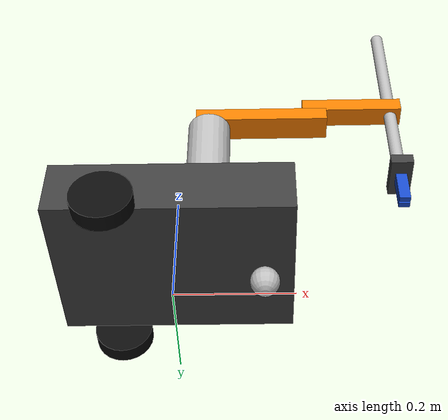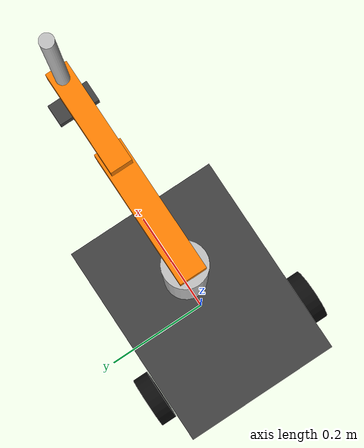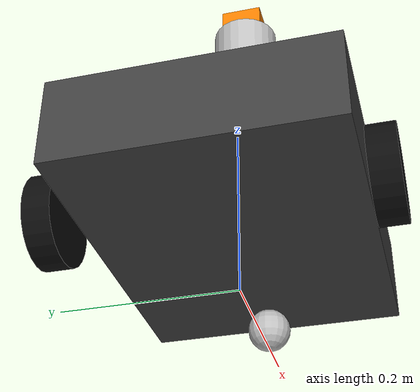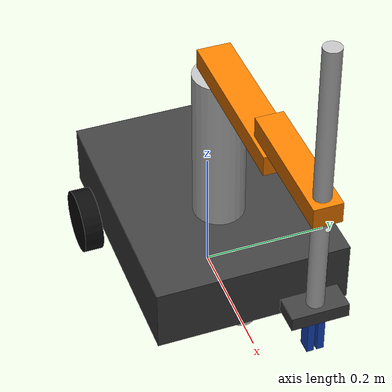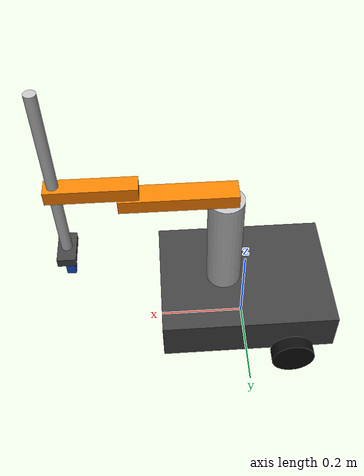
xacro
<?xml version="1.0"?>
<!-- 모바일 매니퓰레이터 최상위 파일 - 차동구동 베이스 + SCARA 팔 -->
<!--
  주의) 주석 안에 "콜론+공백"을 쓰지 말 것.
  gazebo_ros2_control(Humble)이 URDF를 ROS 파라미터(YAML)로 넘기면서 파싱 에러가 남.
-->

<robot name="mobile_manipulator" xmlns:xacro="http://www.ros.org/wiki/xacro">
  <xacro:arg name="use_sim" default="false"/>
  <!-- Gazebo 실행 시 bringup launch에서 컨트롤러 yaml 경로를 넘겨줌 -->
  <xacro:arg name="controllers_file" default=""/>

  <xacro:include filename="$(find mobile_manipulator_description)/urdf/common.xacro"/>
  <xacro:include filename="$(find mobile_manipulator_description)/urdf/base.xacro"/>
  <xacro:include filename="$(find mobile_manipulator_description)/urdf/scara_arm.xacro"/>
  <xacro:include filename="$(find mobile_manipulator_description)/urdf/gazebo.xacro"/>
  <xacro:include filename="$(find mobile_manipulator_description)/urdf/ros2_control.xacro"/>

  <xacro:mobile_base/>
  <xacro:scara_arm parent="base_link"/>

  <xacro:mobile_manipulator_ros2_control use_sim="$(arg use_sim)"/>
  <xacro:mobile_manipulator_gazebo controllers_file="$(arg controllers_file)"/>
</robot>

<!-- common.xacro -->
<!-- 공통 치수, 재질, 관성 매크로 -->
<robot xmlns:xacro="http://www.ros.org/wiki/xacro">

  <!-- ===================== 치수 (단위 - m, kg) ===================== -->
  <!-- 베이스 -->
  <xacro:property name="base_length" value="0.40"/>
  <xacro:property name="base_width"  value="0.30"/>
  <xacro:property name="base_height" value="0.10"/>
  <xacro:property name="base_mass"   value="5.0"/>

  <!-- 바퀴 (base_link 원점 = 바퀴 축 높이) -->
  <xacro:property name="wheel_radius" value="0.05"/>
  <xacro:property name="wheel_width"  value="0.03"/>
  <xacro:property name="wheel_mass"   value="0.5"/>
  <xacro:property name="wheel_x"      value="-0.10"/>
  <xacro:property name="wheel_y"      value="0.17"/>

  <!-- 캐스터 -->
  <xacro:property name="caster_radius" value="0.025"/>
  <xacro:property name="caster_mass"   value="0.1"/>
  <xacro:property name="caster_x"      value="0.15"/>

  <!-- SCARA 팔 -->
  <xacro:property name="arm_mount_x"     value="0.05"/>
  <xacro:property name="column_radius"   value="0.04"/>
  <xacro:property name="column_height"   value="0.25"/>
  <xacro:property name="column_mass"     value="0.5"/>

  <xacro:property name="link1_length" value="0.20"/>
  <xacro:property name="link1_width"  value="0.05"/>
  <xacro:property name="link1_height" value="0.03"/>
  <xacro:property name="link1_mass"   value="0.3"/>

  <xacro:property name="link2_length" value="0.15"/>
  <xacro:property name="link2_width"  value="0.04"/>
  <xacro:property name="link2_height" value="0.03"/>
  <xacro:property name="link2_mass"   value="0.2"/>

  <xacro:property name="quill_radius" value="0.012"/>
  <xacro:property name="quill_length" value="0.40"/>
  <xacro:property name="quill_mass"   value="0.1"/>
  <xacro:property name="quill_stroke" value="0.18"/>
  <!-- quill 프레임(= link2 바닥) 아래로 튀어나온 길이, 나머지는 위로 솟음 -->
  <xacro:property name="quill_bottom" value="0.15"/>

  <!-- 그리퍼 -->
  <xacro:property name="gripper_base_x"    value="0.04"/>
  <xacro:property name="gripper_base_y"    value="0.08"/>
  <xacro:property name="gripper_base_z"    value="0.02"/>
  <xacro:property name="gripper_base_mass" value="0.05"/>
  <xacro:property name="finger_x"    value="0.02"/>
  <xacro:property name="finger_y"    value="0.01"/>
  <xacro:property name="finger_z"    value="0.06"/>
  <xacro:property name="finger_mass" value="0.02"/>
  <xacro:property name="finger_stroke" value="0.03"/>

  <!-- ===================== 재질 (RViz 색상) ===================== -->
  <material name="dark_grey"><color rgba="0.25 0.25 0.25 1.0"/></material>
  <material name="black"><color rgba="0.05 0.05 0.05 1.0"/></material>
  <material name="orange"><color rgba="1.0 0.5 0.0 1.0"/></material>
  <material name="silver"><color rgba="0.75 0.75 0.75 1.0"/></material>
  <material name="blue"><color rgba="0.1 0.3 0.8 1.0"/></material>

  <!-- ===================== 관성 매크로 ===================== -->
  <!-- 균일 밀도 직육면체 - I = m/12 (b^2 + c^2) -->
  <xacro:macro name="box_inertia" params="m x y z *origin">
    <inertial>
      <xacro:insert_block name="origin"/>
      <mass value="${m}"/>
      <inertia ixx="${m * (y*y + z*z) / 12}" ixy="0" ixz="0"
               iyy="${m * (x*x + z*z) / 12}" iyz="0"
               izz="${m * (x*x + y*y) / 12}"/>
    </inertial>
  </xacro:macro>

  <!-- 균일 밀도 원기둥 (축 = 로컬 z) - Ixx = Iyy = m/12 (3r^2 + h^2), Izz = m r^2 / 2 -->
  <xacro:macro name="cylinder_inertia" params="m r h *origin">
    <inertial>
      <xacro:insert_block name="origin"/>
      <mass value="${m}"/>
      <inertia ixx="${m * (3*r*r + h*h) / 12}" ixy="0" ixz="0"
               iyy="${m * (3*r*r + h*h) / 12}" iyz="0"
               izz="${m * r*r / 2}"/>
    </inertial>
  </xacro:macro>

  <!-- 균일 밀도 구 - I = 2/5 m r^2 -->
  <xacro:macro name="sphere_inertia" params="m r *origin">
    <inertial>
      <xacro:insert_block name="origin"/>
      <mass value="${m}"/>
      <inertia ixx="${2 * m * r*r / 5}" ixy="0" ixz="0"
               iyy="${2 * m * r*r / 5}" iyz="0"
               izz="${2 * m * r*r / 5}"/>
    </inertial>
  </xacro:macro>

</robot>

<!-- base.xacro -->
<!-- 차동구동 모바일 베이스 - base_footprint - base_link - 좌우 바퀴 + 캐스터 -->
<robot xmlns:xacro="http://www.ros.org/wiki/xacro">

  <xacro:macro name="wheel" params="side y_sign">
    <joint name="${side}_wheel_joint" type="continuous">
      <parent link="base_link"/>
      <child link="${side}_wheel_link"/>
      <origin xyz="${wheel_x} ${y_sign * wheel_y} 0" rpy="0 0 0"/>
      <axis xyz="0 1 0"/>
      <limit effort="10" velocity="20"/>
      <dynamics damping="0.01"/>
    </joint>

    <link name="${side}_wheel_link">
      <!-- 원기둥은 기본이 z축 방향이므로 x축으로 90도 돌려 y축 방향으로 눕힘 -->
      <visual>
        <origin xyz="0 0 0" rpy="${pi/2} 0 0"/>
        <geometry>
          <cylinder radius="${wheel_radius}" length="${wheel_width}"/>
        </geometry>
        <material name="black"/>
      </visual>
      <collision>
        <origin xyz="0 0 0" rpy="${pi/2} 0 0"/>
        <geometry>
          <cylinder radius="${wheel_radius}" length="${wheel_width}"/>
        </geometry>
      </collision>
      <xacro:cylinder_inertia m="${wheel_mass}" r="${wheel_radius}" h="${wheel_width}">
        <origin xyz="0 0 0" rpy="${pi/2} 0 0"/>
      </xacro:cylinder_inertia>
    </link>
  </xacro:macro>

  <xacro:macro name="mobile_base">
    <!-- 지면 위 로봇 기준 좌표 (diff_drive_controller의 base_frame_id) -->
    <link name="base_footprint"/>

    <joint name="base_joint" type="fixed">
      <parent link="base_footprint"/>
      <child link="base_link"/>
      <origin xyz="0 0 ${wheel_radius}" rpy="0 0 0"/>
    </joint>

    <!-- base_link 원점은 바퀴 축 높이, 몸체는 그 위로 base_height 만큼 -->
    <link name="base_link">
      <visual>
        <origin xyz="0 0 ${base_height/2}" rpy="0 0 0"/>
        <geometry>
          <box size="${base_length} ${base_width} ${base_height}"/>
        </geometry>
        <material name="dark_grey"/>
      </visual>
      <collision>
        <origin xyz="0 0 ${base_height/2}" rpy="0 0 0"/>
        <geometry>
          <box size="${base_length} ${base_width} ${base_height}"/>
        </geometry>
      </collision>
      <xacro:box_inertia m="${base_mass}" x="${base_length}" y="${base_width}" z="${base_height}">
        <origin xyz="0 0 ${base_height/2}" rpy="0 0 0"/>
      </xacro:box_inertia>
    </link>

    <xacro:wheel side="left"  y_sign="1"/>
    <xacro:wheel side="right" y_sign="-1"/>

    <!-- 앞쪽 캐스터 - 몸체 바닥(z=0)에서 지면(z=-wheel_radius)까지 닿도록 -->
    <joint name="caster_joint" type="fixed">
      <parent link="base_link"/>
      <child link="caster_link"/>
      <origin xyz="${caster_x} 0 ${caster_radius - wheel_radius}" rpy="0 0 0"/>
    </joint>

    <link name="caster_link">
      <visual>
        <geometry>
          <sphere radius="${caster_radius}"/>
        </geometry>
        <material name="silver"/>
      </visual>
      <collision>
        <geometry>
          <sphere radius="${caster_radius}"/>
        </geometry>
      </collision>
      <xacro:sphere_inertia m="${caster_mass}" r="${caster_radius}">
        <origin xyz="0 0 0" rpy="0 0 0"/>
      </xacro:sphere_inertia>
    </link>
  </xacro:macro>

</robot>

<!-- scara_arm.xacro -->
<robot xmlns:xacro="http://www.ros.org/wiki/xacro">

  <!-- 끝이 둥근 팔처럼 보이도록 관절 중심 앞뒤로 폭의 절반씩 여유를 둔 box -->
  <xacro:macro name="scara_link" params="name length width height mass color">
    <link name="${name}">
      <visual>
        <origin xyz="${length/2} 0 ${height/2}" rpy="0 0 0"/>
        <geometry>
          <box size="${length + width} ${width} ${height}"/>
        </geometry>
        <material name="${color}"/>
      </visual>
      <collision>
        <origin xyz="${length/2} 0 ${height/2}" rpy="0 0 0"/>
        <geometry>
          <box size="${length + width} ${width} ${height}"/>
        </geometry>
      </collision>
      <xacro:box_inertia m="${mass}" x="${length + width}" y="${width}" z="${height}">
        <origin xyz="${length/2} 0 ${height/2}" rpy="0 0 0"/>
      </xacro:box_inertia>
    </link>
  </xacro:macro>

  <xacro:macro name="finger" params="side y_sign">
    <joint name="gripper_${side}_joint" type="prismatic">
      <parent link="gripper_base_link"/>
      <child link="gripper_${side}_link"/>
      <origin xyz="0 ${y_sign * (finger_y/2 + 0.002)} ${-gripper_base_z}" rpy="0 0 0"/>
      <axis xyz="0 ${y_sign} 0"/>
      <limit lower="0.0" upper="${finger_stroke}" effort="10" velocity="0.5"/>
      <dynamics damping="0.1"/>
      <xacro:if value="${side == 'right'}">
        <mimic joint="gripper_left_joint" multiplier="1"/>
      </xacro:if>
    </joint>

    <link name="gripper_${side}_link">
      <visual>
        <origin xyz="0 0 ${-finger_z/2}" rpy="0 0 0"/>
        <geometry>
          <box size="${finger_x} ${finger_y} ${finger_z}"/>
        </geometry>
        <material name="blue"/>
      </visual>
      <collision>
        <origin xyz="0 0 ${-finger_z/2}" rpy="0 0 0"/>
        <geometry>
          <box size="${finger_x} ${finger_y} ${finger_z}"/>
        </geometry>
      </collision>
      <xacro:box_inertia m="${finger_mass}" x="${finger_x}" y="${finger_y}" z="${finger_z}">
        <origin xyz="0 0 ${-finger_z/2}" rpy="0 0 0"/>
      </xacro:box_inertia>
    </link>
  </xacro:macro>

  <xacro:macro name="scara_arm" params="parent">
    <!-- 베이스 윗면에 고정된 기둥 -->
    <joint name="column_joint" type="fixed">
      <parent link="${parent}"/>
      <child link="column_link"/>
      <origin xyz="${arm_mount_x} 0 ${base_height}" rpy="0 0 0"/>
    </joint>

    <link name="column_link">
      <visual>
        <origin xyz="0 0 ${column_height/2}" rpy="0 0 0"/>
        <geometry>
          <cylinder radius="${column_radius}" length="${column_height}"/>
        </geometry>
        <material name="silver"/>
      </visual>
      <collision>
        <origin xyz="0 0 ${column_height/2}" rpy="0 0 0"/>
        <geometry>
          <cylinder radius="${column_radius}" length="${column_height}"/>
        </geometry>
      </collision>
      <xacro:cylinder_inertia m="${column_mass}" r="${column_radius}" h="${column_height}">
        <origin xyz="0 0 ${column_height/2}" rpy="0 0 0"/>
      </xacro:cylinder_inertia>
    </link>

    <!-- 1축 - 어깨 -->
    <joint name="joint1" type="revolute">
      <parent link="column_link"/>
      <child link="link1"/>
      <origin xyz="0 0 ${column_height}" rpy="0 0 0"/>
      <axis xyz="0 0 1"/>
      <limit lower="-2.5" upper="2.5" effort="10" velocity="2.0"/>
      <dynamics damping="0.1"/>
    </joint>

    <xacro:scara_link name="link1" length="${link1_length}" width="${link1_width}"
                      height="${link1_height}" mass="${link1_mass}" color="orange"/>

    <!-- 2축 - 팔꿈치 (link1 위에 한 층 올려서 겹치지 않게) -->
    <joint name="joint2" type="revolute">
      <parent link="link1"/>
      <child link="link2"/>
      <origin xyz="${link1_length} 0 ${link1_height}" rpy="0 0 0"/>
      <axis xyz="0 0 1"/>
      <limit lower="-2.5" upper="2.5" effort="10" velocity="2.0"/>
      <dynamics damping="0.1"/>
    </joint>

    <xacro:scara_link name="link2" length="${link2_length}" width="${link2_width}"
                      height="${link2_height}" mass="${link2_mass}" color="orange"/>

    <!-- 3축 - quill 상하 이동 (axis -z → 양수 명령이면 내려감) -->
    <joint name="joint3" type="prismatic">
      <parent link="link2"/>
      <child link="quill_link"/>
      <origin xyz="${link2_length} 0 0" rpy="0 0 0"/>
      <axis xyz="0 0 -1"/>
      <limit lower="0.0" upper="${quill_stroke}" effort="50" velocity="0.2"/>
      <dynamics damping="0.1"/>
    </joint>

    <link name="quill_link">
      <visual>
        <origin xyz="0 0 ${quill_length/2 - quill_bottom}" rpy="0 0 0"/>
        <geometry>
          <cylinder radius="${quill_radius}" length="${quill_length}"/>
        </geometry>
        <material name="silver"/>
      </visual>
      <collision>
        <origin xyz="0 0 ${quill_length/2 - quill_bottom}" rpy="0 0 0"/>
        <geometry>
          <cylinder radius="${quill_radius}" length="${quill_length}"/>
        </geometry>
      </collision>
      <xacro:cylinder_inertia m="${quill_mass}" r="${quill_radius}" h="${quill_length}">
        <origin xyz="0 0 ${quill_length/2 - quill_bottom}" rpy="0 0 0"/>
      </xacro:cylinder_inertia>
    </link>

    <!-- 4축 - 손목 회전 -->
    <joint name="joint4" type="revolute">
      <parent link="quill_link"/>
      <child link="gripper_base_link"/>
      <origin xyz="0 0 ${-quill_bottom}" rpy="0 0 0"/>
      <axis xyz="0 0 1"/>
      <limit lower="${-pi}" upper="${pi}" effort="5" velocity="3.0"/>
      <dynamics damping="0.1"/>
    </joint>

    <link name="gripper_base_link">
      <visual>
        <origin xyz="0 0 ${-gripper_base_z/2}" rpy="0 0 0"/>
        <geometry>
          <box size="${gripper_base_x} ${gripper_base_y} ${gripper_base_z}"/>
        </geometry>
        <material name="dark_grey"/>
      </visual>
      <collision>
        <origin xyz="0 0 ${-gripper_base_z/2}" rpy="0 0 0"/>
        <geometry>
          <box size="${gripper_base_x} ${gripper_base_y} ${gripper_base_z}"/>
        </geometry>
      </collision>
      <xacro:box_inertia m="${gripper_base_mass}" x="${gripper_base_x}" y="${gripper_base_y}" z="${gripper_base_z}">
        <origin xyz="0 0 ${-gripper_base_z/2}" rpy="0 0 0"/>
      </xacro:box_inertia>
    </link>

    <xacro:finger side="left"  y_sign="1"/>
    <xacro:finger side="right" y_sign="-1"/>

    <!-- 손가락 끝 사이의 가상 프레임 (TF / 역기구학 기준점) -->
    <joint name="end_effector_joint" type="fixed">
      <parent link="gripper_base_link"/>
      <child link="end_effector_link"/>
      <origin xyz="0 0 ${-(gripper_base_z + finger_z)}" rpy="0 0 0"/>
    </joint>
    <link name="end_effector_link"/>
  </xacro:macro>

</robot>
